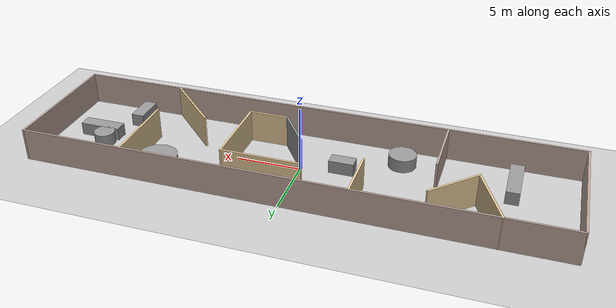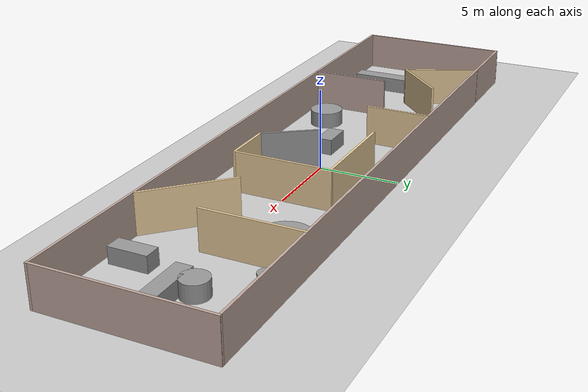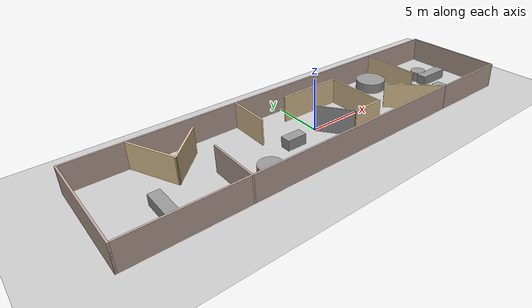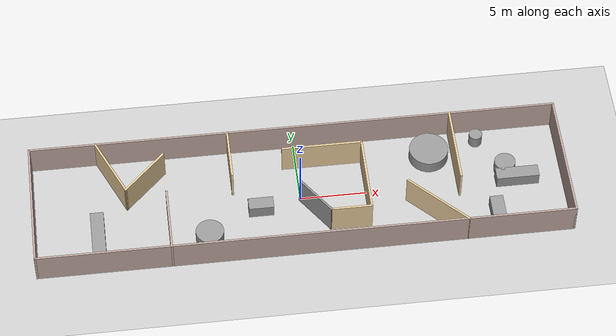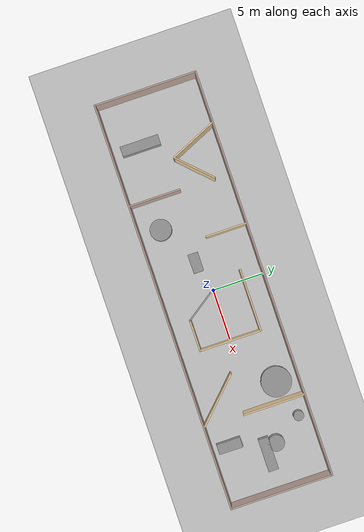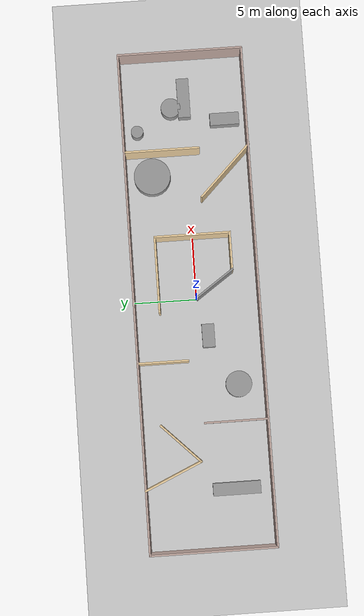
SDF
<sdf version="1.7">
 <world name="default">
  <light name="sun" type="directional">
   <pose>0 0 10 0 -0 0</pose>
   <diffuse>0.8 0.8 0.8 1</diffuse>
   <specular>0.2 0.2 0.2 1</specular>
   <attenuation>
    <range>1000</range>
    <constant>0.9</constant>
    <linear>0.01</linear>
    <quadratic>0.001</quadratic>
   </attenuation>
   <direction>-0.5 0.1 -0.9</direction>
   <spot><inner_angle>0</inner_angle><outer_angle>0</outer_angle><falloff>0</falloff></spot>
  </light>
  <model name="ground_plane">
   <static>1</static>
   <link name="link">
    <collision name="collision">
     <geometry><plane><normal>0 0 1</normal><size>100 100</size></plane></geometry>
     <surface><friction><ode><mu>100</mu><mu2>50</mu2></ode></friction></surface>
    </collision>
    <visual name="visual">
     <cast_shadows>0</cast_shadows>
     <geometry><plane><normal>0 0 1</normal><size>100 100</size></plane></geometry>
     <material>
      <script><uri>file://media/materials/scripts/gazebo.material</uri><name>Gazebo/Grey</name></script>
     </material>
    </visual>
   </link>
  </model>
  <gravity>0 0 -9.8</gravity>
  <magnetic_field>6e-06 2.3e-05 -4.2e-05</magnetic_field>
  <atmosphere type="adiabatic"/>
  <physics type="ode">
   <max_step_size>0.001</max_step_size>
   <real_time_factor>1</real_time_factor>
   <real_time_update_rate>1000</real_time_update_rate>
  </physics>
  <scene><ambient>0.4 0.4 0.4 1</ambient><background>0.7 0.7 0.7 1</background><shadows>1</shadows></scene>
  <spherical_coordinates>
   <surface_model>EARTH_WGS84</surface_model>
   <latitude_deg>0</latitude_deg>
   <longitude_deg>0</longitude_deg>
   <elevation>0</elevation>
   <heading_deg>0</heading_deg>
  </spherical_coordinates>
  <model name="wall_20_10">
   <link name="Wall_0">
    <collision name="Wall_0_Collision">
     <geometry><box><size>40.15 0.15 2.5</size></box></geometry>
     <pose>0 0 1.25 0 -0 0</pose>
    </collision>
    <visual name="Wall_0_Visual">
     <pose>0 0 1.25 0 -0 0</pose>
     <geometry><box><size>40.15 0.15 2.5</size></box></geometry>
     <material>
      <script><uri>file://media/materials/scripts/gazebo.material</uri><name>Gazebo/Grey</name></script>
      <ambient>0.760784 0.662745 0.627451 1</ambient>
     </material>
     <meta><layer>0</layer></meta>
    </visual>
    <pose>0 5 0 0 -0 0</pose>
   </link>
   <link name="Wall_2">
    <collision name="Wall_2_Collision">
     <geometry><box><size>40.15 0.15 2.5</size></box></geometry>
     <pose>0 0 1.25 0 -0 0</pose>
    </collision>
    <visual name="Wall_2_Visual">
     <pose>0 0 1.25 0 -0 0</pose>
     <geometry><box><size>40.15 0.15 2.5</size></box></geometry>
     <material>
      <script><uri>file://media/materials/scripts/gazebo.material</uri><name>Gazebo/Grey</name></script>
      <ambient>0.760784 0.662745 0.627451 1</ambient>
     </material>
     <meta><layer>0</layer></meta>
    </visual>
    <pose>0 -5 0 0 -0 0</pose>
   </link>
   <link name="Wall_4">
    <collision name="Wall_4_Collision">
     <geometry><box><size>10.15 0.15 2.5</size></box></geometry>
     <pose>0 0 1.25 0 -0 0</pose>
    </collision>
    <visual name="Wall_4_Visual">
     <pose>0 0 1.25 0 -0 0</pose>
     <geometry><box><size>10.15 0.15 2.5</size></box></geometry>
     <material>
      <script><uri>file://media/materials/scripts/gazebo.material</uri><name>Gazebo/Grey</name></script>
      <ambient>0.760784 0.662745 0.627451 1</ambient>
     </material>
     <meta><layer>0</layer></meta>
    </visual>
    <pose>-20 0 0 0 -0 -1.5708</pose>
   </link>
   <link name="Wall_7">
    <collision name="Wall_7_Collision">
     <geometry><box><size>10.15 0.15 2.5</size></box></geometry>
     <pose>0 0 1.25 0 -0 0</pose>
    </collision>
    <visual name="Wall_7_Visual">
     <pose>0 0 1.25 0 -0 0</pose>
     <geometry><box><size>10.15 0.15 2.5</size></box></geometry>
     <material>
      <script><uri>file://media/materials/scripts/gazebo.material</uri><name>Gazebo/Grey</name></script>
      <ambient>0.760784 0.662745 0.627451 1</ambient>
     </material>
     <meta><layer>0</layer></meta>
    </visual>
    <pose>20 0 0 0 -0 -1.5708</pose>
   </link>
   <static>1</static>
  </model>
  <model name="wall_20_10_in">
   <pose>-1.49646 -0.003535 0 0 -0 0</pose>
   <link name="Wall_11">
    <collision name="Wall_11_Collision">
     <geometry><box><size>3.15 0.15 2.5</size></box></geometry>
     <pose>0 0 1.25 0 -0 0</pose>
    </collision>
    <visual name="Wall_11_Visual">
     <pose>0 0 1.25 0 -0 0</pose>
     <geometry><box><size>3.15 0.15 2.5</size></box></geometry>
     <material>
      <script><uri>file://media/materials/scripts/gazebo.material</uri><name>Gazebo/Grey</name></script>
      <ambient>0.921569 0.807843 0.615686 1</ambient>
     </material>
     <meta><layer>0</layer></meta>
    </visual>
    <pose>4.99646 -2.99647 0 0 -0 3.14159</pose>
   </link>
   <link name="Wall_12">
    <collision name="Wall_12_Collision">
     <geometry><box><size>3.68801 0.15 2.5</size></box></geometry>
     <pose>0 0 1.25 0 -0 0</pose>
    </collision>
    <visual name="Wall_12_Visual">
     <pose>0 0 1.25 0 -0 0</pose>
     <geometry><box><size>3.68801 0.15 2.5</size></box></geometry>
     <material>
      <script><uri>file://media/materials/scripts/gazebo.material</uri><name>Gazebo/Grey</name></script>
      <ambient>1 1 1 1</ambient>
     </material>
     <meta><layer>0</layer></meta>
    </visual>
    <pose>2.48396 -1.54587 0 0 -0 2.18017</pose>
   </link>
   <link name="Wall_14">
    <collision name="Wall_14_Collision">
     <geometry><box><size>6.15 0.15 2.5</size></box></geometry>
     <pose>0 0 1.25 0 -0 0</pose>
    </collision>
    <visual name="Wall_14_Visual">
     <pose>0 0 1.25 0 -0 0</pose>
     <geometry><box><size>6.15 0.15 2.5</size></box></geometry>
     <material>
      <script><uri>file://media/materials/scripts/gazebo.material</uri><name>Gazebo/Grey</name></script>
      <ambient>0.921569 0.807843 0.615686 1</ambient>
     </material>
     <meta><layer>0</layer></meta>
    </visual>
    <pose>3.49647 3.00353 0 0 -0 3.14159</pose>
   </link>
   <link name="Wall_16">
    <collision name="Wall_16_Collision">
     <geometry><box><size>5.80685 0.15 2.5</size></box></geometry>
     <pose>0 0 1.25 0 -0 0</pose>
    </collision>
    <visual name="Wall_16_Visual">
     <pose>0 0 1.25 0 -0 0</pose>
     <geometry><box><size>5.80685 0.15 2.5</size></box></geometry>
     <material>
      <script><uri>file://media/materials/scripts/gazebo.material</uri><name>Gazebo/Grey</name></script>
      <ambient>0.921569 0.807843 0.615686 1</ambient>
     </material>
     <meta><layer>0</layer></meta>
    </visual>
    <pose>11.4965 -2.99647 0 0 -0 2.35619</pose>
   </link>
   <link name="Wall_18">
    <collision name="Wall_18_Collision">
     <geometry><box><size>6.15 0.15 2.5</size></box></geometry>
     <pose>0 0 1.25 0 -0 0</pose>
    </collision>
    <visual name="Wall_18_Visual">
     <pose>0 0 1.25 0 -0 0</pose>
     <geometry><box><size>6.15 0.15 2.5</size></box></geometry>
     <material>
      <script><uri>file://media/materials/scripts/gazebo.material</uri><name>Gazebo/Grey</name></script>
      <ambient>0.921569 0.807843 0.615686 1</ambient>
     </material>
     <meta><layer>0</layer></meta>
    </visual>
    <pose>13.4965 2.00353 0 0 -0 1.5708</pose>
   </link>
   <link name="Wall_20">
    <collision name="Wall_20_Collision">
     <geometry><box><size>4.15 0.15 2.5</size></box></geometry>
     <pose>0 0 1.25 0 -0 0</pose>
    </collision>
    <visual name="Wall_20_Visual">
     <pose>0 0 1.25 0 -0 0</pose>
     <geometry><box><size>4.15 0.15 2.5</size></box></geometry>
     <material>
      <script><uri>file://media/materials/scripts/gazebo.material</uri><name>Gazebo/Grey</name></script>
      <ambient>0.921569 0.807843 0.615686 1</ambient>
     </material>
     <meta><layer>0</layer></meta>
    </visual>
    <pose>-3.50353 3.00353 0 0 -0 -1.5708</pose>
   </link>
   <link name="Wall_26">
    <collision name="Wall_26_Collision">
     <geometry><box><size>5.15 0.15 2.5</size></box></geometry>
     <pose>0 0 1.25 0 -0 0</pose>
    </collision>
    <visual name="Wall_26_Visual">
     <pose>0 0 1.25 0 -0 0</pose>
     <geometry><box><size>5.15 0.15 2.5</size></box></geometry>
     <material>
      <script><uri>file://media/materials/scripts/gazebo.material</uri><name>Gazebo/Grey</name></script>
      <ambient>0.760784 0.662745 0.627451 1</ambient>
     </material>
     <meta><layer>0</layer></meta>
    </visual>
    <pose>-8.50353 -2.49647 0 0 -0 1.5708</pose>
   </link>
   <link name="Wall_30">
    <collision name="Wall_30_Collision">
     <geometry><box><size>5.07443 0.15 2.5</size></box></geometry>
     <pose>0 0 1.25 0 -0 0</pose>
    </collision>
    <visual name="Wall_30_Visual">
     <pose>0 0 1.25 0 -0 0</pose>
     <geometry><box><size>5.07443 0.15 2.5</size></box></geometry>
     <material>
      <script><uri>file://media/materials/scripts/gazebo.material</uri><name>Gazebo/Grey</name></script>
      <ambient>0.921569 0.807843 0.615686 1</ambient>
     </material>
     <meta><layer>0</layer></meta>
    </visual>
    <pose>-12.5035 2.75353 0 0 -0 -1.15257</pose>
   </link>
   <link name="Wall_31">
    <collision name="Wall_31_Collision">
     <geometry><box><size>4.39264 0.15 2.5</size></box></geometry>
     <pose>0 0 1.25 0 -0 0</pose>
    </collision>
    <visual name="Wall_31_Visual">
     <pose>0 0 1.25 0 -0 0</pose>
     <geometry><box><size>4.39264 0.15 2.5</size></box></geometry>
     <material>
      <script><uri>file://media/materials/scripts/gazebo.material</uri><name>Gazebo/Grey</name></script>
      <ambient>0.921569 0.807843 0.615686 1</ambient>
     </material>
     <meta><layer>0</layer></meta>
    </visual>
    <pose>-10.0035 2.00353 0 0 -0 0.785398</pose>
   </link>
   <link name="Wall_9">
    <collision name="Wall_9_Collision">
     <geometry><box><size>6.15 0.15 2.5</size></box></geometry>
     <pose>0 0 1.25 0 -0 0</pose>
    </collision>
    <visual name="Wall_9_Visual">
     <pose>0 0 1.25 0 -0 0</pose>
     <geometry><box><size>6.15 0.15 2.5</size></box></geometry>
     <material>
      <script><uri>file://media/materials/scripts/gazebo.material</uri><name>Gazebo/Grey</name></script>
      <ambient>0.921569 0.807843 0.615686 1</ambient>
     </material>
     <meta><layer>0</layer></meta>
    </visual>
    <pose>6.49646 0.003535 0 0 -0 -1.5708</pose>
   </link>
   <static>1</static>
  </model>
  <model name="scenarios_4">
   <link name="link_0">
    <inertial>
     <mass>4.43874</mass>
     <inertia><ixx>1.60131</ixx><ixy>0</ixy><ixz>0</ixz><iyy>1.60131</iyy><iyz>0</iyz><izz>2.46282</izz></inertia>
    </inertial>
    <pose>-12.7586 -2.74366 0 0 -0 0</pose>
    <visual name="visual">
     <geometry><cylinder><radius>1.05342</radius><length>1</length></cylinder></geometry>
     <material>
      <lighting>1</lighting>
      <script><uri>file://media/materials/scripts/gazebo.material</uri><name>Gazebo/Grey</name></script>
      <shader type="pixel"/>
     </material>
    </visual>
    <collision name="collision">
     <geometry><cylinder><radius>1.05342</radius><length>1</length></cylinder></geometry>
     <surface>
      <friction>
       <ode><mu>1</mu><mu2>1</mu2><fdir1>0 0 0</fdir1><slip1>0</slip1><slip2>0</slip2></ode>
       <torsional>
        <coefficient>1</coefficient>
        <patch_radius>0</patch_radius>
        <surface_radius>0</surface_radius>
        <use_patch_radius>1</use_patch_radius>
        <ode><slip>0</slip></ode>
       </torsional>
      </friction>
      <bounce><restitution_coefficient>0</restitution_coefficient><threshold>1e+06</threshold></bounce>
      <contact>
       <collide_without_contact>0</collide_without_contact>
       <collide_without_contact_bitmask>1</collide_without_contact_bitmask>
       <collide_bitmask>1</collide_bitmask>
       <ode>
        <soft_cfm>0</soft_cfm>
        <soft_erp>0.2</soft_erp>
        <kp>1e+13</kp>
        <kd>1</kd>
        <max_vel>0.01</max_vel>
        <min_depth>0</min_depth>
       </ode>
       <bullet>
        <split_impulse>1</split_impulse>
        <split_impulse_penetration_threshold>-0.01</split_impulse_penetration_threshold>
        <soft_cfm>0</soft_cfm>
        <soft_erp>0.2</soft_erp>
        <kp>1e+13</kp>
        <kd>1</kd>
       </bullet>
      </contact>
     </surface>
    </collision>
   </link>
   <link name="link_1">
    <inertial>
     <mass>3.22798</mass>
     <inertia><ixx>0.537997</ixx><ixy>0</ixy><ixz>0</ixz><iyy>3.07192</iyy><iyz>0</iyz><izz>3.07192</izz></inertia>
    </inertial>
    <pose>10.82 0.117764 0 0 -0 0</pose>
    <visual name="visual">
     <geometry><box><size>3.22798 1 1</size></box></geometry>
     <material>
      <lighting>1</lighting>
      <script><uri>file://media/materials/scripts/gazebo.material</uri><name>Gazebo/Grey</name></script>
      <shader type="pixel"/>
     </material>
    </visual>
    <collision name="collision">
     <geometry><box><size>3.22798 1 1</size></box></geometry>
     <surface>
      <friction>
       <ode><mu>1</mu><mu2>1</mu2><fdir1>0 0 0</fdir1><slip1>0</slip1><slip2>0</slip2></ode>
       <torsional>
        <coefficient>1</coefficient>
        <patch_radius>0</patch_radius>
        <surface_radius>0</surface_radius>
        <use_patch_radius>1</use_patch_radius>
        <ode><slip>0</slip></ode>
       </torsional>
      </friction>
      <bounce><restitution_coefficient>0</restitution_coefficient><threshold>1e+06</threshold></bounce>
      <contact>
       <collide_without_contact>0</collide_without_contact>
       <collide_without_contact_bitmask>1</collide_without_contact_bitmask>
       <collide_bitmask>1</collide_bitmask>
       <ode>
        <soft_cfm>0</soft_cfm>
        <soft_erp>0.2</soft_erp>
        <kp>1e+13</kp>
        <kd>1</kd>
        <max_vel>0.01</max_vel>
        <min_depth>0</min_depth>
       </ode>
       <bullet>
        <split_impulse>1</split_impulse>
        <split_impulse_penetration_threshold>-0.01</split_impulse_penetration_threshold>
        <soft_cfm>0</soft_cfm>
        <soft_erp>0.2</soft_erp>
        <kp>1e+13</kp>
        <kd>1</kd>
       </bullet>
      </contact>
     </surface>
    </collision>
   </link>
   <link name="link_2">
    <inertial>
     <mass>8.8425</mass>
     <inertia><ixx>5.6237</ixx><ixy>0</ixy><ixz>0</ixz><iyy>5.6237</iyy><iyz>0</iyz><izz>9.77366</izz></inertia>
    </inertial>
    <pose>4.48978 3.06612 0 0 -0 0</pose>
    <visual name="visual">
     <geometry><cylinder><radius>1.48681</radius><length>1</length></cylinder></geometry>
     <material>
      <lighting>1</lighting>
      <script><uri>file://media/materials/scripts/gazebo.material</uri><name>Gazebo/Grey</name></script>
      <shader type="pixel"/>
     </material>
    </visual>
    <collision name="collision">
     <geometry><cylinder><radius>1.48681</radius><length>1</length></cylinder></geometry>
     <surface>
      <friction>
       <ode><mu>1</mu><mu2>1</mu2><fdir1>0 0 0</fdir1><slip1>0</slip1><slip2>0</slip2></ode>
       <torsional>
        <coefficient>1</coefficient>
        <patch_radius>0</patch_radius>
        <surface_radius>0</surface_radius>
        <use_patch_radius>1</use_patch_radius>
        <ode><slip>0</slip></ode>
       </torsional>
      </friction>
      <bounce><restitution_coefficient>0</restitution_coefficient><threshold>1e+06</threshold></bounce>
      <contact>
       <collide_without_contact>0</collide_without_contact>
       <collide_without_contact_bitmask>1</collide_without_contact_bitmask>
       <collide_bitmask>1</collide_bitmask>
       <ode>
        <soft_cfm>0</soft_cfm>
        <soft_erp>0.2</soft_erp>
        <kp>1e+13</kp>
        <kd>1</kd>
        <max_vel>0.01</max_vel>
        <min_depth>0</min_depth>
       </ode>
       <bullet>
        <split_impulse>1</split_impulse>
        <split_impulse_penetration_threshold>-0.01</split_impulse_penetration_threshold>
        <soft_cfm>0</soft_cfm>
        <soft_erp>0.2</soft_erp>
        <kp>1e+13</kp>
        <kd>1</kd>
       </bullet>
      </contact>
     </surface>
    </collision>
   </link>
   <link name="link_3">
    <inertial>
     <mass>1.88424</mass>
     <inertia>
      <ixx>0.31404</ixx>
      <ixy>0</ixy>
      <ixz>0</ixz>
      <iyy>0.714501</iyy>
      <iyz>0</iyz>
      <izz>0.714501</izz>
     </inertia>
    </inertial>
    <pose>-8.72319 -0.58317 0 0 -0 0</pose>
    <visual name="visual">
     <geometry><box><size>1.88424 1 1</size></box></geometry>
     <material>
      <lighting>1</lighting>
      <script><uri>file://media/materials/scripts/gazebo.material</uri><name>Gazebo/Grey</name></script>
      <shader type="pixel"/>
     </material>
    </visual>
    <collision name="collision">
     <geometry><box><size>1.88424 1 1</size></box></geometry>
     <surface>
      <friction>
       <ode><mu>1</mu><mu2>1</mu2><fdir1>0 0 0</fdir1><slip1>0</slip1><slip2>0</slip2></ode>
       <torsional>
        <coefficient>1</coefficient>
        <patch_radius>0</patch_radius>
        <surface_radius>0</surface_radius>
        <use_patch_radius>1</use_patch_radius>
        <ode><slip>0</slip></ode>
       </torsional>
      </friction>
      <bounce><restitution_coefficient>0</restitution_coefficient><threshold>1e+06</threshold></bounce>
      <contact>
       <collide_without_contact>0</collide_without_contact>
       <collide_without_contact_bitmask>1</collide_without_contact_bitmask>
       <collide_bitmask>1</collide_bitmask>
       <ode>
        <soft_cfm>0</soft_cfm>
        <soft_erp>0.2</soft_erp>
        <kp>1e+13</kp>
        <kd>1</kd>
        <max_vel>0.01</max_vel>
        <min_depth>0</min_depth>
       </ode>
       <bullet>
        <split_impulse>1</split_impulse>
        <split_impulse_penetration_threshold>-0.01</split_impulse_penetration_threshold>
        <soft_cfm>0</soft_cfm>
        <soft_erp>0.2</soft_erp>
        <kp>1e+13</kp>
        <kd>1</kd>
       </bullet>
      </contact>
     </surface>
    </collision>
   </link>
   <link name="link_4">
    <inertial>
     <mass>2.56844</mass>
     <inertia>
      <ixx>0.626339</ixx>
      <ixy>0</ixy>
      <ixz>0</ixz>
      <iyy>0.626339</iyy>
      <iyz>0</iyz>
      <izz>0.824604</izz>
     </inertia>
    </inertial>
    <pose>10.0518 1.20475 0 0 -0 0</pose>
    <visual name="visual">
     <geometry><cylinder><radius>0.801315</radius><length>1</length></cylinder></geometry>
     <material>
      <lighting>1</lighting>
      <script><uri>file://media/materials/scripts/gazebo.material</uri><name>Gazebo/Grey</name></script>
      <shader type="pixel"/>
     </material>
    </visual>
    <collision name="collision">
     <geometry><cylinder><radius>0.801315</radius><length>1</length></cylinder></geometry>
     <surface>
      <friction>
       <ode><mu>1</mu><mu2>1</mu2><fdir1>0 0 0</fdir1><slip1>0</slip1><slip2>0</slip2></ode>
       <torsional>
        <coefficient>1</coefficient>
        <patch_radius>0</patch_radius>
        <surface_radius>0</surface_radius>
        <use_patch_radius>1</use_patch_radius>
        <ode><slip>0</slip></ode>
       </torsional>
      </friction>
      <bounce><restitution_coefficient>0</restitution_coefficient><threshold>1e+06</threshold></bounce>
      <contact>
       <collide_without_contact>0</collide_without_contact>
       <collide_without_contact_bitmask>1</collide_without_contact_bitmask>
       <collide_bitmask>1</collide_bitmask>
       <ode>
        <soft_cfm>0</soft_cfm>
        <soft_erp>0.2</soft_erp>
        <kp>1e+13</kp>
        <kd>1</kd>
        <max_vel>0.01</max_vel>
        <min_depth>0</min_depth>
       </ode>
       <bullet>
        <split_impulse>1</split_impulse>
        <split_impulse_penetration_threshold>-0.01</split_impulse_penetration_threshold>
        <soft_cfm>0</soft_cfm>
        <soft_erp>0.2</soft_erp>
        <kp>1e+13</kp>
        <kd>1</kd>
       </bullet>
      </contact>
     </surface>
    </collision>
   </link>
   <link name="link_5">
    <inertial>
     <mass>2.37247</mass>
     <inertia><ixx>1.31052</ixx><ixy>0</ixy><ixz>0</ixz><iyy>0.395412</iyy><iyz>0</iyz><izz>1.31052</izz></inertia>
    </inertial>
    <pose>8.87216 -3.11418 0 0 -0 0</pose>
    <visual name="visual">
     <geometry><box><size>1 2.37247 1</size></box></geometry>
     <material>
      <lighting>1</lighting>
      <script><uri>file://media/materials/scripts/gazebo.material</uri><name>Gazebo/Grey</name></script>
      <shader type="pixel"/>
     </material>
    </visual>
    <collision name="collision">
     <geometry><box><size>1 2.37247 1</size></box></geometry>
     <surface>
      <friction>
       <ode><mu>1</mu><mu2>1</mu2><fdir1>0 0 0</fdir1><slip1>0</slip1><slip2>0</slip2></ode>
       <torsional>
        <coefficient>1</coefficient>
        <patch_radius>0</patch_radius>
        <surface_radius>0</surface_radius>
        <use_patch_radius>1</use_patch_radius>
        <ode><slip>0</slip></ode>
       </torsional>
      </friction>
      <bounce><restitution_coefficient>0</restitution_coefficient><threshold>1e+06</threshold></bounce>
      <contact>
       <collide_without_contact>0</collide_without_contact>
       <collide_without_contact_bitmask>1</collide_without_contact_bitmask>
       <collide_bitmask>1</collide_bitmask>
       <ode>
        <soft_cfm>0</soft_cfm>
        <soft_erp>0.2</soft_erp>
        <kp>1e+13</kp>
        <kd>1</kd>
        <max_vel>0.01</max_vel>
        <min_depth>0</min_depth>
       </ode>
       <bullet>
        <split_impulse>1</split_impulse>
        <split_impulse_penetration_threshold>-0.01</split_impulse_penetration_threshold>
        <soft_cfm>0</soft_cfm>
        <soft_erp>0.2</soft_erp>
        <kp>1e+13</kp>
        <kd>1</kd>
       </bullet>
      </contact>
     </surface>
    </collision>
   </link>
   <link name="link_7">
    <inertial>
     <mass>3.80427</mass>
     <inertia><ixx>4.90512</ixx><ixy>0</ixy><ixz>0</ixz><iyy>0.634045</iyy><iyz>0</iyz><izz>4.90512</izz></inertia>
    </inertial>
    <pose>-21.0058 -2.00118 0 0 -0 0</pose>
    <visual name="visual">
     <geometry><box><size>1 3.80427 1</size></box></geometry>
     <material>
      <lighting>1</lighting>
      <script><uri>file://media/materials/scripts/gazebo.material</uri><name>Gazebo/Grey</name></script>
      <shader type="pixel"/>
     </material>
    </visual>
    <collision name="collision">
     <geometry><box><size>1 3.80427 1</size></box></geometry>
     <surface>
      <friction>
       <ode><mu>1</mu><mu2>1</mu2><fdir1>0 0 0</fdir1><slip1>0</slip1><slip2>0</slip2></ode>
       <torsional>
        <coefficient>1</coefficient>
        <patch_radius>0</patch_radius>
        <surface_radius>0</surface_radius>
        <use_patch_radius>1</use_patch_radius>
        <ode><slip>0</slip></ode>
       </torsional>
      </friction>
      <bounce><restitution_coefficient>0</restitution_coefficient><threshold>1e+06</threshold></bounce>
      <contact>
       <collide_without_contact>0</collide_without_contact>
       <collide_without_contact_bitmask>1</collide_without_contact_bitmask>
       <collide_bitmask>1</collide_bitmask>
       <ode>
        <soft_cfm>0</soft_cfm>
        <soft_erp>0.2</soft_erp>
        <kp>1e+13</kp>
        <kd>1</kd>
        <max_vel>0.01</max_vel>
        <min_depth>0</min_depth>
       </ode>
       <bullet>
        <split_impulse>1</split_impulse>
        <split_impulse_penetration_threshold>-0.01</split_impulse_penetration_threshold>
        <soft_cfm>0</soft_cfm>
        <soft_erp>0.2</soft_erp>
        <kp>1e+13</kp>
        <kd>1</kd>
       </bullet>
      </contact>
     </surface>
    </collision>
   </link>
   <link name="link_8">
    <inertial>
     <mass>1</mass>
     <inertia><ixx>0.145833</ixx><ixy>0</ixy><ixz>0</ixz><iyy>0.145833</iyy><iyz>0</iyz><izz>0.125</izz></inertia>
    </inertial>
    <pose>8.25396 4.05358 0 0 -0 0</pose>
    <visual name="visual">
     <geometry><cylinder><radius>0.5</radius><length>1</length></cylinder></geometry>
     <material>
      <lighting>1</lighting>
      <script><uri>file://media/materials/scripts/gazebo.material</uri><name>Gazebo/Grey</name></script>
      <shader type="pixel"/>
     </material>
    </visual>
    <collision name="collision">
     <geometry><cylinder><radius>0.5</radius><length>1</length></cylinder></geometry>
     <surface>
      <friction>
       <ode><mu>1</mu><mu2>1</mu2><fdir1>0 0 0</fdir1><slip1>0</slip1><slip2>0</slip2></ode>
       <torsional>
        <coefficient>1</coefficient>
        <patch_radius>0</patch_radius>
        <surface_radius>0</surface_radius>
        <use_patch_radius>1</use_patch_radius>
        <ode><slip>0</slip></ode>
       </torsional>
      </friction>
      <bounce><restitution_coefficient>0</restitution_coefficient><threshold>1e+06</threshold></bounce>
      <contact>
       <collide_without_contact>0</collide_without_contact>
       <collide_without_contact_bitmask>1</collide_without_contact_bitmask>
       <collide_bitmask>1</collide_bitmask>
       <ode>
        <soft_cfm>0</soft_cfm>
        <soft_erp>0.2</soft_erp>
        <kp>1e+13</kp>
        <kd>1</kd>
        <max_vel>0.01</max_vel>
        <min_depth>0</min_depth>
       </ode>
       <bullet>
        <split_impulse>1</split_impulse>
        <split_impulse_penetration_threshold>-0.01</split_impulse_penetration_threshold>
        <soft_cfm>0</soft_cfm>
        <soft_erp>0.2</soft_erp>
        <kp>1e+13</kp>
        <kd>1</kd>
       </bullet>
      </contact>
     </surface>
    </collision>
   </link>
   <static>1</static>
   <pose>5.68846 -0.174434 0.5 0 -0 0</pose>
  </model>
 </world>
</sdf>
